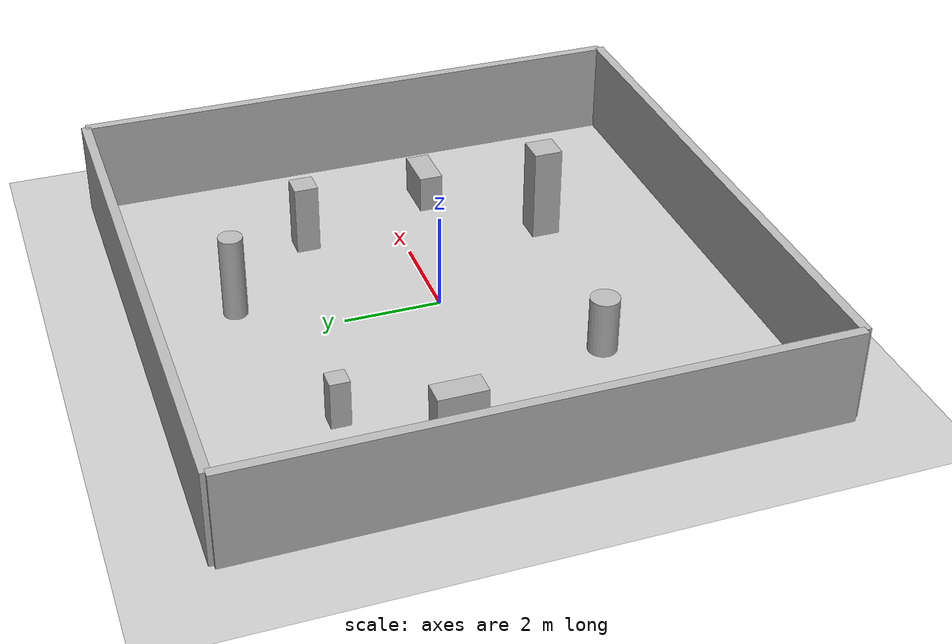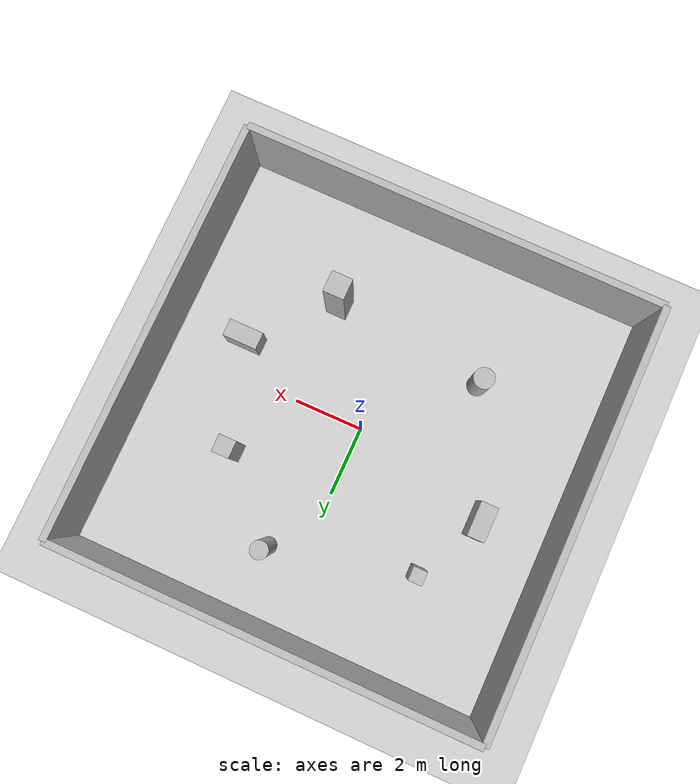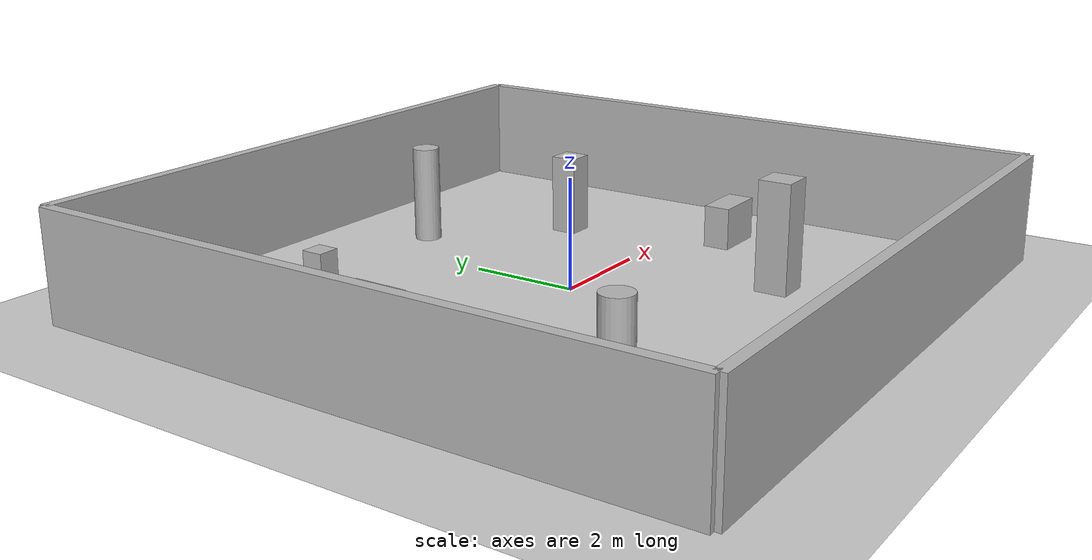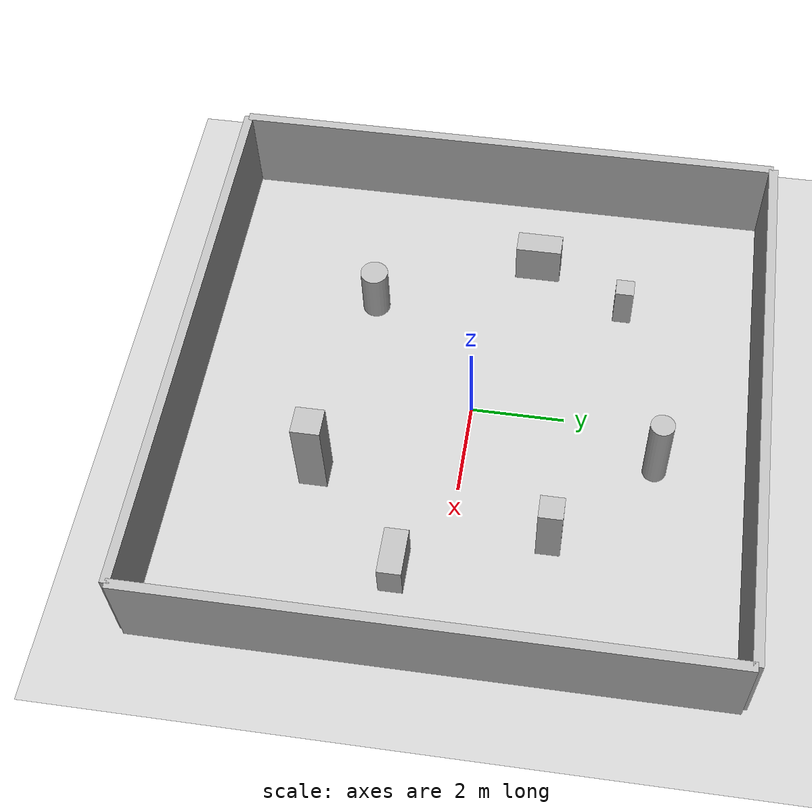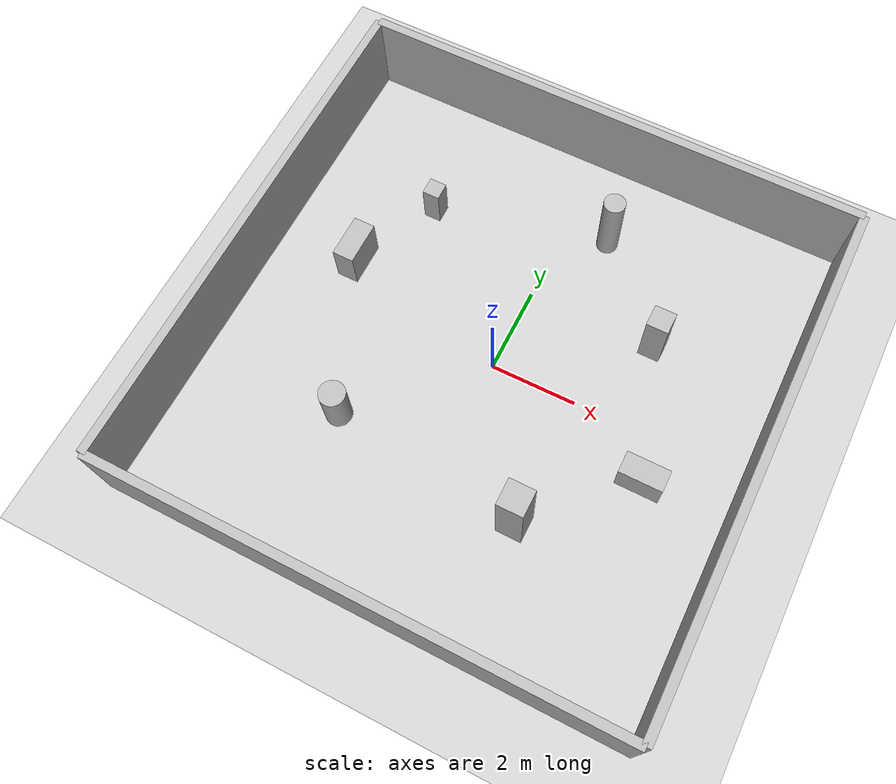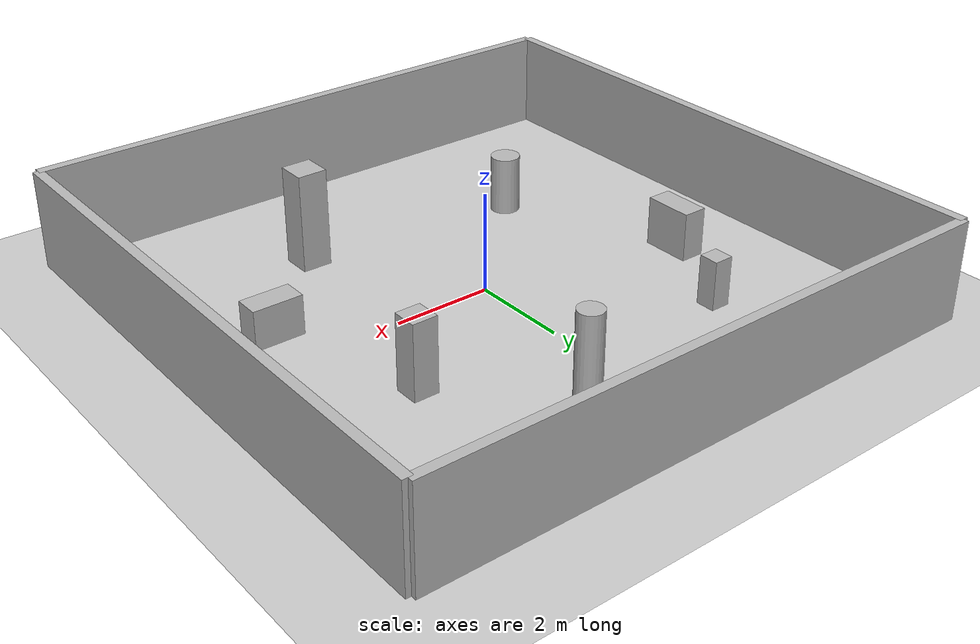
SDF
<?xml version="1.0"?>
<sdf version="1.9">
  <world name="robot_test">
    <plugin filename="gz-sim-physics-system" name="gz::sim::systems::Physics"/>
    <plugin filename="gz-sim-sensors-system" name="gz::sim::systems::Sensors">
      <render_engine>ogre2</render_engine>
    </plugin>
    <plugin filename="gz-sim-imu-system" name="gz::sim::systems::Imu"/>
    <plugin filename="gz-sim-scene-broadcaster-system" name="gz::sim::systems::SceneBroadcaster"/>
    <plugin filename="gz-sim-user-commands-system" name="gz::sim::systems::UserCommands"/>

    <light type="directional" name="sun">
      <cast_shadows>true</cast_shadows>
      <pose>0 0 10 0 0 0</pose>
      <diffuse>0.8 0.8 0.8 1</diffuse>
      <direction>-0.5 0.1 -0.9</direction>
    </light>

    <model name="ground"><static>true</static><link name="l">
      <collision name="c"><geometry><plane><normal>0 0 1</normal><size>50 50</size></plane></geometry></collision>
      <visual name="v"><geometry><plane><normal>0 0 1</normal><size>50 50</size></plane></geometry></visual>
    </link></model>

    <!-- 4 面外墙(围成 ~12x12 场地) -->
    <model name="wall_east"><static>true</static><pose>6 0 1 0 0 0</pose><link name="l">
      <collision name="c"><geometry><box><size>0.2 12 2</size></box></geometry></collision>
      <visual name="v"><geometry><box><size>0.2 12 2</size></box></geometry></visual>
    </link></model>
    <model name="wall_west"><static>true</static><pose>-6 0 1 0 0 0</pose><link name="l">
      <collision name="c"><geometry><box><size>0.2 12 2</size></box></geometry></collision>
      <visual name="v"><geometry><box><size>0.2 12 2</size></box></geometry></visual>
    </link></model>
    <model name="wall_north"><static>true</static><pose>0 6 1 0 0 0</pose><link name="l">
      <collision name="c"><geometry><box><size>12 0.2 2</size></box></geometry></collision>
      <visual name="v"><geometry><box><size>12 0.2 2</size></box></geometry></visual>
    </link></model>
    <model name="wall_south"><static>true</static><pose>0 -6 1 0 0 0</pose><link name="l">
      <collision name="c"><geometry><box><size>12 0.2 2</size></box></geometry></collision>
      <visual name="v"><geometry><box><size>12 0.2 2</size></box></geometry></visual>
    </link></model>

    <!-- 7 个散开障碍(高低/形状/位置各异，原点附近留空) -->
    <model name="obs_1"><static>true</static><pose>3 2 0.75 0 0 0</pose><link name="l">
      <collision name="c"><geometry><box><size>0.5 0.5 1.5</size></box></geometry></collision>
      <visual name="v"><geometry><box><size>0.5 0.5 1.5</size></box></geometry></visual>
    </link></model>
    <model name="obs_2"><static>true</static><pose>-3 3 0.5 0 0 0</pose><link name="l">
      <collision name="c"><geometry><box><size>0.4 0.4 1.0</size></box></geometry></collision>
      <visual name="v"><geometry><box><size>0.4 0.4 1.0</size></box></geometry></visual>
    </link></model>
    <model name="obs_3"><static>true</static><pose>2 -3 1.0 0 0 0</pose><link name="l">
      <collision name="c"><geometry><box><size>0.6 0.6 2.0</size></box></geometry></collision>
      <visual name="v"><geometry><box><size>0.6 0.6 2.0</size></box></geometry></visual>
    </link></model>
    <model name="obs_4"><static>true</static><pose>-2.5 -2.5 0.6 0 0 0</pose><link name="l">
      <collision name="c"><geometry><cylinder><radius>0.3</radius><length>1.2</length></cylinder></geometry></collision>
      <visual name="v"><geometry><cylinder><radius>0.3</radius><length>1.2</length></cylinder></geometry></visual>
    </link></model>
    <model name="obs_5"><static>true</static><pose>4 -1 0.4 0 0 0</pose><link name="l">
      <collision name="c"><geometry><box><size>1.0 0.5 0.8</size></box></geometry></collision>
      <visual name="v"><geometry><box><size>1.0 0.5 0.8</size></box></geometry></visual>
    </link></model>
    <model name="obs_6"><static>true</static><pose>-4 1 0.5 0 0 0</pose><link name="l">
      <collision name="c"><geometry><box><size>0.5 1.0 1.0</size></box></geometry></collision>
      <visual name="v"><geometry><box><size>0.5 1.0 1.0</size></box></geometry></visual>
    </link></model>
    <model name="obs_7"><static>true</static><pose>1 4 0.9 0 0 0</pose><link name="l">
      <collision name="c"><geometry><cylinder><radius>0.25</radius><length>1.8</length></cylinder></geometry></collision>
      <visual name="v"><geometry><cylinder><radius>0.25</radius><length>1.8</length></cylinder></geometry></visual>
    </link></model>
  </world>
</sdf>
